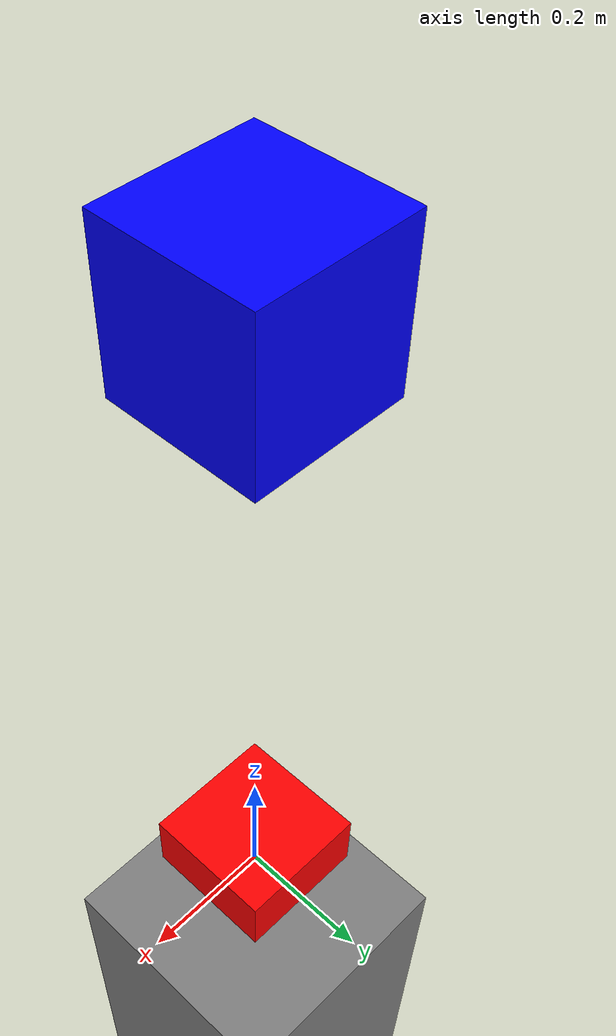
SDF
<?xml version="1.0"?>
<sdf version="1.7">
  <world name='hypa_world'>
    <physics name='1ms' type='ignored'>
      <max_step_size>0.001</max_step_size>
      <real_time_factor>1</real_time_factor>
      <real_time_update_rate>1000</real_time_update_rate>
      <dart>
        <solver>
          <solver_type>dantzig</solver_type>
        </solver>
        <collision_detector>ode</collision_detector>
      </dart>
    </physics>
    <plugin name='gz::sim::systems::Physics' filename='gz-sim-physics-system' />
    <plugin name='gz::sim::systems::UserCommands' filename='gz-sim-user-commands-system' />
    <plugin name='gz::sim::systems::SceneBroadcaster' filename='gz-sim-scene-broadcaster-system' />
    <plugin name='gz::sim::systems::Contact' filename='gz-sim-contact-system' />
    <plugin name='gz::sim::systems::Sensors' filename='gz-sim-sensors-system' />
    <magnetic_field>5.5644999999999998e-06 2.2875799999999999e-05 -4.2388400000000002e-05</magnetic_field>
    <atmosphere type='adiabatic' />
    <scene>
      <ambient>0.8 0.8 0.8 1</ambient>
      <background>0.8 0.8 0.8 1</background>
      <shadows>true</shadows>
      <grid>false</grid>
    </scene>
    <light name='sun' type='directional'>
      <visualize>false</visualize>
      <pose>0 0 50 0 0 0</pose>
      <cast_shadows>true</cast_shadows>
      <intensity>2</intensity>
      <direction>-0.10000000000000001 -0.5 -0.90000000000000002</direction>
      <diffuse>0.800000012 0.800000012 0.800000012 1</diffuse>
      <specular>0.200000003 0.200000003 0.200000003 1</specular>
      <attenuation>
        <range>1000</range>
        <linear>0.0099999997764825821</linear>
        <constant>0.89999997615814209</constant>
        <quadratic>0.0010000000474974513</quadratic>
      </attenuation>
      <spot>
        <inner_angle>0</inner_angle>
        <outer_angle>0</outer_angle>
        <falloff>0</falloff>
      </spot>
    </light>
    <!-- 地面 -->
    <model name="ground_plane">
      <static>true</static>
      <link name="link">
        <pose>0 0 -0.5 0 0 0</pose>
        <collision name="collision">
          <geometry>
            <box>
              <size>100 100 1</size>
            </box>
          </geometry>
          <surface>
            <friction>
              <ode>
                <mu>100</mu>
                <mu2>50</mu2>
              </ode>
            </friction>
          </surface>
        </collision>
        <visual name="visual">
          <cast_shadows>false</cast_shadows>
          <geometry>
            <box>
              <size>100 100 1</size>
            </box>
          </geometry>
          <material>
            <ambient>0.5 0.5 0.5 1</ambient>
            <diffuse>0.5 0.5 0.5 1</diffuse>
            <specular>0.1 0.1 0.1 1</specular>
          </material>
        </visual>
      </link>
    </model>
    <model name="rope_example">
      <static>false</static>

      <!-- Base link (fixed) -->
      <link name="start_link">
        <pose>0 0 1 0 0 0</pose>
        <visual name="base_visual">
          <geometry>
            <box>
              <size>0.2 0.2 0.2</size>
            </box>
          </geometry>
          <material>
            <ambient>0 0 1 1</ambient>
            <diffuse>0 0 1 1</diffuse>
          </material>
        </visual>
        <collision name="base_collision">
          <geometry>
            <box>
              <size>0.2 0.2 0.2</size>
            </box>
          </geometry>
        </collision>
      </link>

      <!-- End link (movable via prismatic joint) -->
      <link name="end_link">
        <pose>0 0 0 0 0 0</pose>
        <visual name="end_visual">
          <geometry>
            <box>
              <size>0.2 0.2 0.2</size>
            </box>
          </geometry>
          <material>
            <ambient>1 0 0 1</ambient>
            <diffuse>1 0 0 1</diffuse>
          </material>
        </visual>
        <collision name="end_collision">
          <geometry>
            <box>
              <size>0.2 0.2 0.2</size>
            </box>
          </geometry>
        </collision>
      </link>

      <!-- Prismatic joint to simulate rope length change -->
      <joint name="prismatic_joint" type="prismatic">
        <parent>start_link</parent>
        <child>end_link</child>
        <axis>
          <xyz>0 0 -1</xyz>
          <limit>
            <lower>0</lower>
            <upper>5</upper>
            <effort>100</effort>
            <velocity>1</velocity>
          </limit>
        </axis>
      </joint>

      <!-- Rope Visualizer Plugin -->
      <plugin
        filename="libRopeVisualizer.so"
        name="hypa_gazebo::RopeVisualizer">
        <start_link>start_link</start_link>
        <end_link>end_link</end_link>
        <line_width>0.05</line_width>
        <color>
          <r>0.2</r>
          <g>0.8</g>
          <b>0.2</b>
          <a>1.0</a>
        </color>
        <show_endpoints>true</show_endpoints>
      </plugin>
    </model>
  </world>

</sdf>
